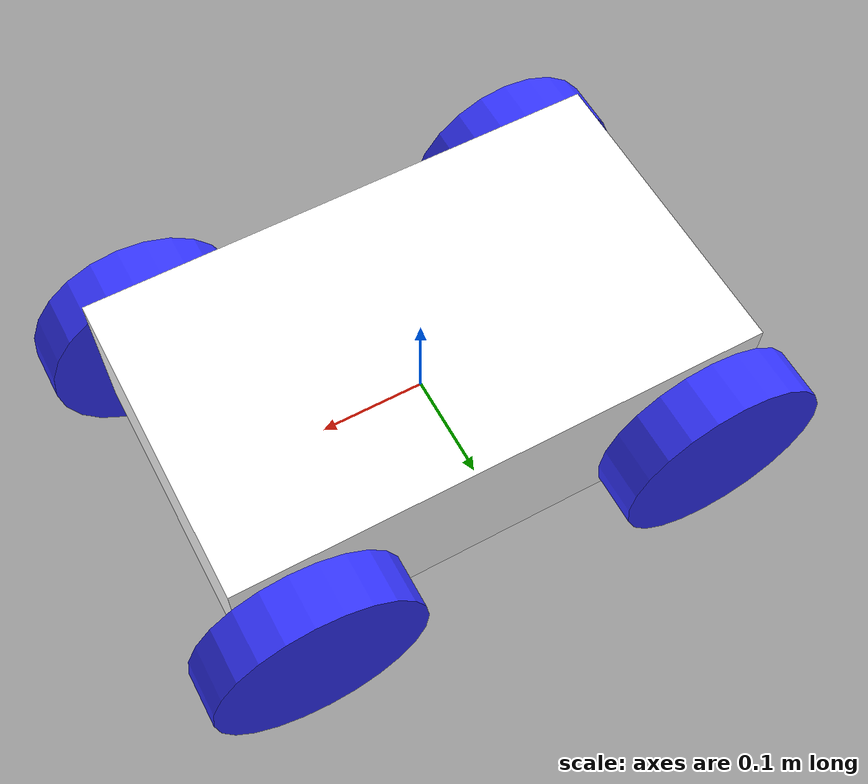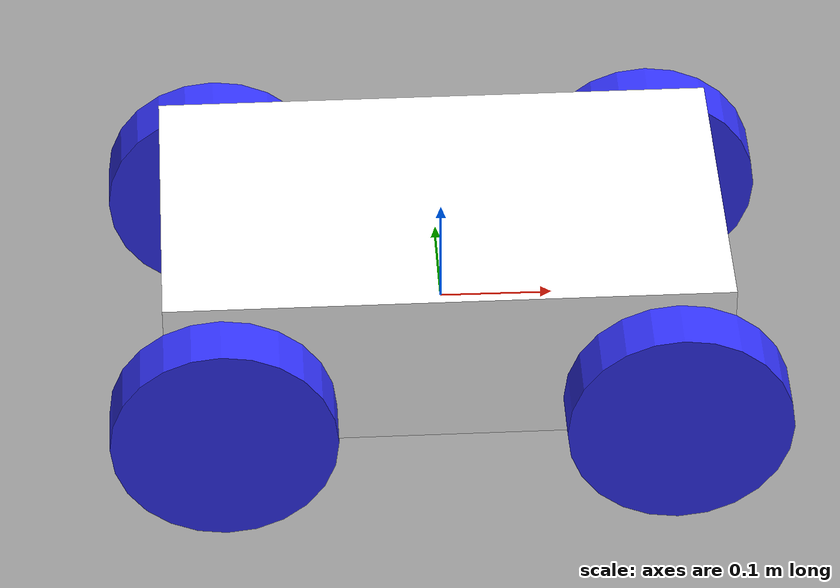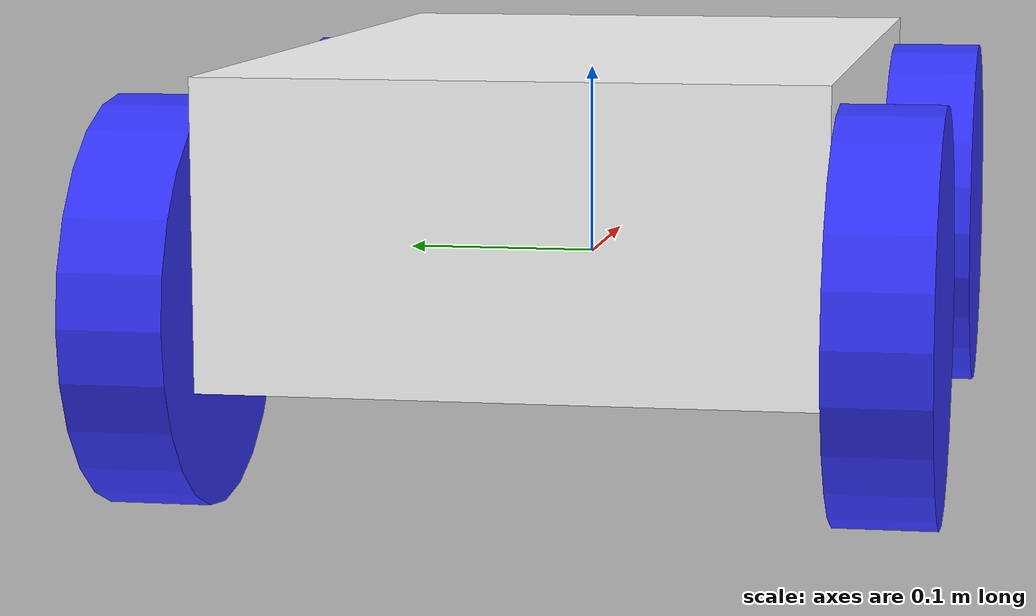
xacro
<?xml version="1.0"?>
<robot xmlns:xacro="http://www.ros.org/wiki/xacro"  name="rover">

    <!-- ROVER PARAMETERS-->
    <xacro:property name="wheel_radius" value="0.1" />
    <xacro:property name="wheel_width" value="0.05" />
    <xacro:property name="wheel_spacing" value="0.4" />
    <xacro:property name="wheel_mass" value="0.1" />

    <xacro:property name="body_height" value="0.15" />
    <xacro:property name="body_width" value="0.3" />
    <xacro:property name="body_length" value="0.5" />
    <xacro:property name="body_mass" value="0.5" />

    <xacro:property name="wheel_max_velocity" value="10" />

    <!-- IMPORT -->
    <xacro:include filename="robot_core.xacro" />
    <xacro:include filename="ros2_control.xacro" />

</robot>

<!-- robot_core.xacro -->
<robot xmlns:xacro="http://www.ros.org/wiki/xacro" >

    <xacro:include filename="inertial_macros.xacro"/>

    <material name="white">
        <color rgba="1 1 1 1" />
    </material>

    <material name="orange">
        <color rgba="1 0.3 0.1 1"/>
    </material>

    <material name="blue">
        <color rgba="0.2 0.2 1 1"/>
    </material>

    <material name="black">
        <color rgba="0 0 0 1"/>
    </material>

    <!-- BASE LINK -->

    <link name="base_link">

    </link>

    <!-- CHASSIS LINK -->
    <link name="chassis_link">
        <visual>
            <origin xyz="0 0 ${body_height/4}"/>
            <geometry>
                <box size="${body_length} ${body_width} ${body_height}"/>
            </geometry>
            <material name="white"/>
        </visual>

        <collision>
            <origin xyz="0 0 ${body_height/4}"/>
            <geometry>
                <box size="${body_length} ${body_width} ${body_height}"/>
            </geometry>
        </collision>

        <xacro:inertial_box mass="${body_mass}" x="${body_length}" y="${body_width}" z="${body_height}">
            <origin xyz="0 0 ${body_height/4}" rpy="0 0 0"/>
        </xacro:inertial_box>
    </link>
    <gazebo reference="chassis_link">
        <material>Gazebo/White</material>
    </gazebo>

    <!-- LEFT REAR WHEEL LINK -->

    <link name="left_rear_wheel">
        <visual>
            <geometry>
                <cylinder radius="${wheel_radius}" length="${wheel_width}"/>
            </geometry>
            <material name="blue"/>
        </visual>

        <collision>
            <geometry>
                <sphere radius="${wheel_radius}"/>
            </geometry>
        </collision>
        <xacro:inertial_cylinder mass="${wheel_mass}" length="${wheel_width}" radius="${wheel_radius}">
            <origin xyz="0 0 0" rpy="0 0 0"/>
        </xacro:inertial_cylinder>
    </link>
    <gazebo reference="left_rear_wheel">
        <material>Gazebo/Blue</material>
    </gazebo>

    <!-- RIGHT REAR WHEEL LINK -->

    <link name="right_rear_wheel">
        <visual>
            <geometry>
                <cylinder radius="${wheel_radius}" length="${wheel_width}"/>
            </geometry>
            <material name="blue"/>
        </visual>

        <collision>
            <geometry>
                <sphere radius="${wheel_radius}"/>
            </geometry>
        </collision>
        <xacro:inertial_cylinder mass="${wheel_mass}" length="${wheel_width}" radius="${wheel_radius}">
            <origin xyz="0 0 0" rpy="0 0 0"/>
        </xacro:inertial_cylinder>
    </link>
    <gazebo reference="right_rear_wheel">
        <material>Gazebo/Blue</material>
    </gazebo>

    <!-- LEFT FRONT WHEEL LINK -->

    <link name="left_front_wheel">
        <visual>
            <geometry>
                <cylinder radius="${wheel_radius}" length="${wheel_width}"/>
            </geometry>
            <material name="blue"/>
        </visual>

        <collision>
            <geometry>
                <sphere radius="${wheel_radius}"/>
            </geometry>
        </collision>
        <xacro:inertial_cylinder mass="${wheel_mass}" length="${wheel_width}" radius="${wheel_radius}">
            <origin xyz="0 0 0" rpy="0 0 0"/>
        </xacro:inertial_cylinder>
    </link>
    <gazebo reference="left_front_wheel">
        <material>Gazebo/Blue</material>
    </gazebo>

    <!-- RIGHT FRONT WHEEL LINK -->

    <link name="right_front_wheel">
        <visual>
            <geometry>
                <cylinder radius="${wheel_radius}" length="${wheel_width}"/>
            </geometry>
            <material name="blue"/>
        </visual>

        <collision>
            <geometry>
                <sphere radius="${wheel_radius}"/>
            </geometry>
        </collision>
        <xacro:inertial_cylinder mass="${wheel_mass}" length="${wheel_width}" radius="${wheel_radius}">
            <origin xyz="0 0 0" rpy="0 0 0"/>
        </xacro:inertial_cylinder>
    </link>
    <gazebo reference="right_front_wheel">
        <material>Gazebo/Blue</material>
    </gazebo>

    <!-- CHASSIS JOINT -->

    <joint name="chassis_joint" type="fixed">
        <parent link="base_link"/>
        <child link="chassis_link"/>
    </joint>

    <!-- LEFT REAR WHEEL JOINT -->

    <joint name="left_rear_wheel_joint" type="continuous">
        <parent link="base_link"/>
        <child link="left_rear_wheel"/>
        <origin xyz="-${wheel_spacing/2} ${body_width/2 + wheel_width/2} 0" rpy="-${pi/2} 0 0" />
        <axis xyz="0 0 1"/>
    </joint>

    <!-- RIGHT REAR WHEEL JOINT -->

    <joint name="right_rear_wheel_joint" type="continuous">
        <parent link="base_link"/>
        <child link="right_rear_wheel"/>
        <origin xyz="-${wheel_spacing/2} -${body_width/2 + wheel_width/2} 0" rpy="-${pi/2} 0 0" />
        <axis xyz="0 0 1"/>
    </joint>

    <!-- LEFT FRONT WHEEL JOINT -->

    <joint name="left_front_wheel_joint" type="continuous">
        <parent link="base_link"/>
        <child link="left_front_wheel"/>
        <origin xyz="${wheel_spacing/2} ${body_width/2 + wheel_width/2} 0" rpy="-${pi/2} 0 0" />
        <axis xyz="0 0 1"/>
    </joint>

    <!-- RIGHT FRONT WHEEL JOINT -->

    <joint name="right_front_wheel_joint" type="continuous">
        <parent link="base_link"/>
        <child link="right_front_wheel"/>
        <origin xyz="${wheel_spacing/2} -${body_width/2 + wheel_width/2} 0" rpy="-${pi/2} 0 0" />
        <axis xyz="0 0 1"/>
    </joint>

</robot>
